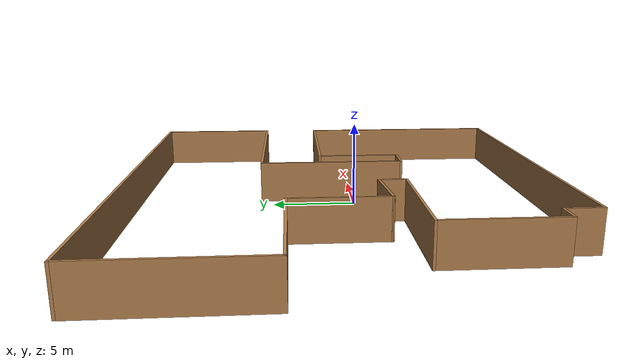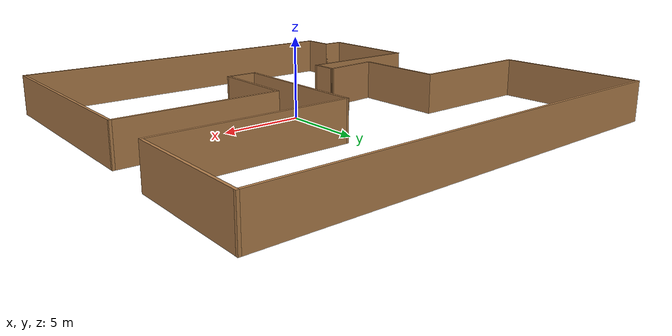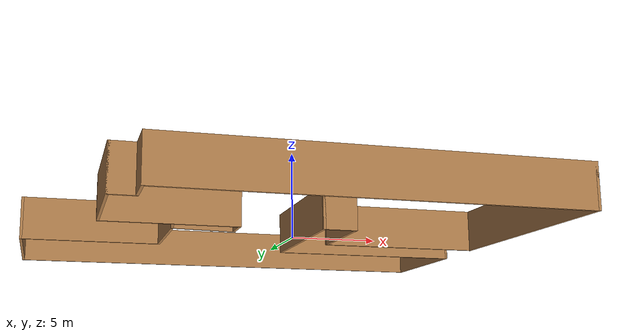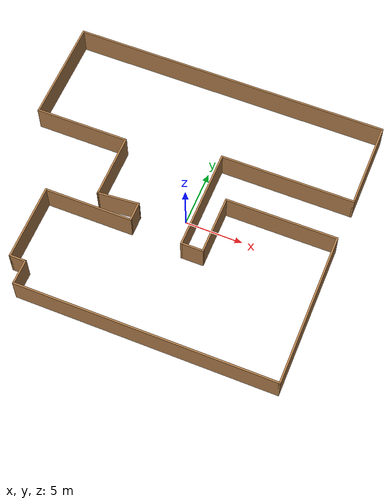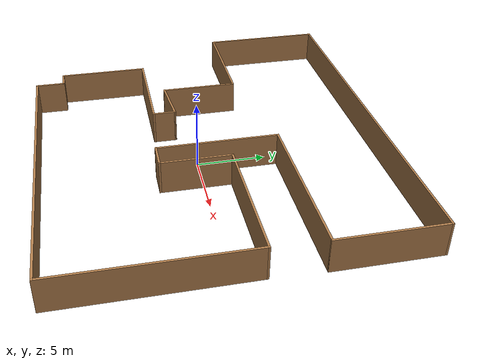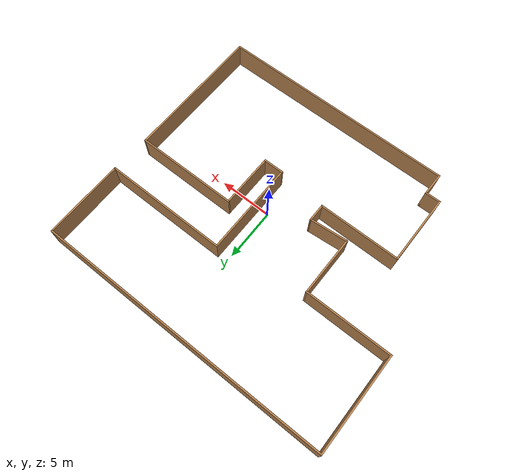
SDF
<?xml version='1.0'?>
<sdf version='1.6'>
  <model name='layout'>
    <pose frame=''>-1.405 1 0 0 -0 0</pose>
    <link name='Wall_0'>
      <collision name='Wall_0_Collision'>
        <geometry>
          <box>
            <size>1.75 0.15 2.5</size>
          </box>
        </geometry>
        <pose frame=''>0 0 1.25 0 -0 0</pose>
      </collision>
      <visual name='Wall_0_Visual'>
        <pose frame=''>0 0 1.25 0 -0 0</pose>
        <geometry>
          <box>
            <size>1.75 0.15 2.5</size>
          </box>
        </geometry>
        <material>
          <script>
            <uri>file://media/materials/scripts/gazebo.material</uri>
            <name>Gazebo/Wood</name>
          </script>
          <ambient>1 1 1 1</ambient>
        </material>
        <meta>
          <layer>0</layer>
        </meta>
      </visual>
      <pose frame=''>-2.325 -2.85 0 0 -0 -1.5708</pose>
    </link>
    <link name='Wall_1'>
      <collision name='Wall_1_Collision'>
        <geometry>
          <box>
            <size>7.75 0.15 2.5</size>
          </box>
        </geometry>
        <pose frame=''>0 0 1.25 0 -0 0</pose>
      </collision>
      <visual name='Wall_1_Visual'>
        <pose frame=''>0 0 1.25 0 -0 0</pose>
        <geometry>
          <box>
            <size>7.75 0.15 2.5</size>
          </box>
        </geometry>
        <material>
          <script>
            <uri>file://media/materials/scripts/gazebo.material</uri>
            <name>Gazebo/Wood</name>
          </script>
          <ambient>1 1 1 1</ambient>
        </material>
        <meta>
          <layer>0</layer>
        </meta>
      </visual>
      <pose frame=''>-6.125 -3.65 0 0 -0 3.14159</pose>
    </link>
    <link name='Wall_10'>
      <collision name='Wall_10_Collision'>
        <geometry>
          <box>
            <size>9 0.15 2.5</size>
          </box>
        </geometry>
        <pose frame=''>0 0 1.25 0 -0 0</pose>
      </collision>
      <visual name='Wall_10_Visual'>
        <pose frame=''>0 0 1.25 0 -0 0</pose>
        <geometry>
          <box>
            <size>9 0.15 2.5</size>
          </box>
        </geometry>
        <material>
          <script>
            <uri>file://media/materials/scripts/gazebo.material</uri>
            <name>Gazebo/Wood</name>
          </script>
          <ambient>1 1 1 1</ambient>
        </material>
        <meta>
          <layer>0</layer>
        </meta>
      </visual>
      <pose frame=''>2.325 0.325 0 0 -0 1.5708</pose>
    </link>
    <link name='Wall_11'>
      <collision name='Wall_11_Collision'>
        <geometry>
          <box>
            <size>11.75 0.15 2.5</size>
          </box>
        </geometry>
        <pose frame=''>0 0 1.25 0 -0 0</pose>
      </collision>
      <visual name='Wall_11_Visual'>
        <pose frame=''>0 0 1.25 0 -0 0</pose>
        <geometry>
          <box>
            <size>11.75 0.15 2.5</size>
          </box>
        </geometry>
        <material>
          <script>
            <uri>file://media/materials/scripts/gazebo.material</uri>
            <name>Gazebo/Wood</name>
          </script>
          <ambient>1 1 1 1</ambient>
        </material>
        <meta>
          <layer>0</layer>
        </meta>
      </visual>
      <pose frame=''>8.125 4.75 0 0 -0 0</pose>
    </link>
    <link name='Wall_12'>
      <collision name='Wall_12_Collision'>
        <geometry>
          <box>
            <size>7.75 0.15 2.5</size>
          </box>
        </geometry>
        <pose frame=''>0 0 1.25 0 -0 0</pose>
      </collision>
      <visual name='Wall_12_Visual'>
        <pose frame=''>0 0 1.25 0 -0 0</pose>
        <geometry>
          <box>
            <size>7.75 0.15 2.5</size>
          </box>
        </geometry>
        <material>
          <script>
            <uri>file://media/materials/scripts/gazebo.material</uri>
            <name>Gazebo/Wood</name>
          </script>
          <ambient>1 1 1 1</ambient>
        </material>
        <meta>
          <layer>0</layer>
        </meta>
      </visual>
      <pose frame=''>13.925 8.55 0 0 -0 1.5708</pose>
    </link>
    <link name='Wall_13'>
      <collision name='Wall_13_Collision'>
        <geometry>
          <box>
            <size>28 0.15 2.5</size>
          </box>
        </geometry>
        <pose frame=''>0 0 1.25 0 -0 0</pose>
      </collision>
      <visual name='Wall_13_Visual'>
        <pose frame=''>0 0 1.25 0 -0 0</pose>
        <geometry>
          <box>
            <size>28 0.15 2.5</size>
          </box>
        </geometry>
        <material>
          <script>
            <uri>file://media/materials/scripts/gazebo.material</uri>
            <name>Gazebo/Wood</name>
          </script>
          <ambient>1 1 1 1</ambient>
        </material>
        <meta>
          <layer>0</layer>
        </meta>
      </visual>
      <pose frame=''>-0 12.35 0 0 -0 3.14159</pose>
    </link>
    <link name='Wall_14'>
      <collision name='Wall_14_Collision'>
        <geometry>
          <box>
            <size>9.25 0.15 2.5</size>
          </box>
        </geometry>
        <pose frame=''>0 0 1.25 0 -0 0</pose>
      </collision>
      <visual name='Wall_14_Visual'>
        <pose frame=''>0 0 1.25 0 -0 0</pose>
        <geometry>
          <box>
            <size>9.25 0.15 2.5</size>
          </box>
        </geometry>
        <material>
          <script>
            <uri>file://media/materials/scripts/gazebo.material</uri>
            <name>Gazebo/Wood</name>
          </script>
          <ambient>1 1 1 1</ambient>
        </material>
        <meta>
          <layer>0</layer>
        </meta>
      </visual>
      <pose frame=''>-13.925 7.8 0 0 -0 -1.5708</pose>
    </link>
    <link name='Wall_15'>
      <collision name='Wall_15_Collision'>
        <geometry>
          <box>
            <size>8.25 0.15 2.5</size>
          </box>
        </geometry>
        <pose frame=''>0 0 1.25 0 -0 0</pose>
      </collision>
      <visual name='Wall_15_Visual'>
        <pose frame=''>0 0 1.25 0 -0 0</pose>
        <geometry>
          <box>
            <size>8.25 0.15 2.5</size>
          </box>
        </geometry>
        <material>
          <script>
            <uri>file://media/materials/scripts/gazebo.material</uri>
            <name>Gazebo/Wood</name>
          </script>
          <ambient>1 1 1 1</ambient>
        </material>
        <meta>
          <layer>0</layer>
        </meta>
      </visual>
      <pose frame=''>-9.875 3.25 0 0 -0 0</pose>
    </link>
    <link name='Wall_16'>
      <collision name='Wall_16_Collision'>
        <geometry>
          <box>
            <size>5.75 0.15 2.5</size>
          </box>
        </geometry>
        <pose frame=''>0 0 1.25 0 -0 0</pose>
      </collision>
      <visual name='Wall_16_Visual'>
        <pose frame=''>0 0 1.25 0 -0 0</pose>
        <geometry>
          <box>
            <size>5.75 0.15 2.5</size>
          </box>
        </geometry>
        <material>
          <script>
            <uri>file://media/materials/scripts/gazebo.material</uri>
            <name>Gazebo/Wood</name>
          </script>
          <ambient>1 1 1 1</ambient>
        </material>
        <meta>
          <layer>0</layer>
        </meta>
      </visual>
      <pose frame=''>-5.825 0.45 0 0 -0 -1.5708</pose>
    </link>
    <link name='Wall_17'>
      <collision name='Wall_17_Collision'>
        <geometry>
          <box>
            <size>3.66283 0.15 2.5</size>
          </box>
        </geometry>
        <pose frame=''>0 0 1.25 0 -0 0</pose>
      </collision>
      <visual name='Wall_17_Visual'>
        <pose frame=''>0 0 1.25 0 -0 0</pose>
        <geometry>
          <box>
            <size>3.66283 0.15 2.5</size>
          </box>
        </geometry>
        <material>
          <script>
            <uri>file://media/materials/scripts/gazebo.material</uri>
            <name>Gazebo/Wood</name>
          </script>
          <ambient>1 1 1 1</ambient>
        </material>
        <meta>
          <layer>0</layer>
        </meta>
      </visual>
      <pose frame=''>-4.075 -2.2 0 0 -0 0.085505</pose>
    </link>
    <link name='Wall_2'>
      <collision name='Wall_2_Collision'>
        <geometry>
          <box>
            <size>6.75 0.15 2.5</size>
          </box>
        </geometry>
        <pose frame=''>0 0 1.25 0 -0 0</pose>
      </collision>
      <visual name='Wall_2_Visual'>
        <pose frame=''>0 0 1.25 0 -0 0</pose>
        <geometry>
          <box>
            <size>6.75 0.15 2.5</size>
          </box>
        </geometry>
        <material>
          <script>
            <uri>file://media/materials/scripts/gazebo.material</uri>
            <name>Gazebo/Wood</name>
          </script>
          <ambient>1 1 1 1</ambient>
        </material>
        <meta>
          <layer>0</layer>
        </meta>
      </visual>
      <pose frame=''>-9.925 -6.95 0 0 -0 -1.5708</pose>
    </link>
    <link name='Wall_3'>
      <collision name='Wall_3_Collision'>
        <geometry>
          <box>
            <size>1.5 0.15 2.5</size>
          </box>
        </geometry>
        <pose frame=''>0 0 1.25 0 -0 0</pose>
      </collision>
      <visual name='Wall_3_Visual'>
        <pose frame=''>0 0 1.25 0 -0 0</pose>
        <geometry>
          <box>
            <size>1.5 0.15 2.5</size>
          </box>
        </geometry>
        <material>
          <script>
            <uri>file://media/materials/scripts/gazebo.material</uri>
            <name>Gazebo/Wood</name>
          </script>
          <ambient>1 1 1 1</ambient>
        </material>
        <meta>
          <layer>0</layer>
        </meta>
      </visual>
      <pose frame=''>-9.25 -10.25 0 0 -0 0</pose>
    </link>
    <link name='Wall_4'>
      <collision name='Wall_4_Collision'>
        <geometry>
          <box>
            <size>2.25 0.15 2.5</size>
          </box>
        </geometry>
        <pose frame=''>0 0 1.25 0 -0 0</pose>
      </collision>
      <visual name='Wall_4_Visual'>
        <pose frame=''>0 0 1.25 0 -0 0</pose>
        <geometry>
          <box>
            <size>2.25 0.15 2.5</size>
          </box>
        </geometry>
        <material>
          <script>
            <uri>file://media/materials/scripts/gazebo.material</uri>
            <name>Gazebo/Wood</name>
          </script>
          <ambient>1 1 1 1</ambient>
        </material>
        <meta>
          <layer>0</layer>
        </meta>
      </visual>
      <pose frame=''>-8.575 -11.3 0 0 -0 -1.5708</pose>
    </link>
    <link name='Wall_5'>
      <collision name='Wall_5_Collision'>
        <geometry>
          <box>
            <size>22.5 0.15 2.5</size>
          </box>
        </geometry>
        <pose frame=''>0 0 1.25 0 -0 0</pose>
      </collision>
      <visual name='Wall_5_Visual'>
        <pose frame=''>0 0 1.25 0 -0 0</pose>
        <geometry>
          <box>
            <size>22.5 0.15 2.5</size>
          </box>
        </geometry>
        <material>
          <script>
            <uri>file://media/materials/scripts/gazebo.material</uri>
            <name>Gazebo/Wood</name>
          </script>
          <ambient>1 1 1 1</ambient>
        </material>
        <meta>
          <layer>0</layer>
        </meta>
      </visual>
      <pose frame=''>2.6 -12.35 0 0 -0 0</pose>
    </link>
    <link name='Wall_6'>
      <collision name='Wall_6_Collision'>
        <geometry>
          <box>
            <size>13.5 0.15 2.5</size>
          </box>
        </geometry>
        <pose frame=''>0 0 1.25 0 -0 0</pose>
      </collision>
      <visual name='Wall_6_Visual'>
        <pose frame=''>0 0 1.25 0 -0 0</pose>
        <geometry>
          <box>
            <size>13.5 0.15 2.5</size>
          </box>
        </geometry>
        <material>
          <script>
            <uri>file://media/materials/scripts/gazebo.material</uri>
            <name>Gazebo/Wood</name>
          </script>
          <ambient>1 1 1 1</ambient>
        </material>
        <meta>
          <layer>0</layer>
        </meta>
      </visual>
      <pose frame=''>13.775 -5.675 0 0 -0 1.5708</pose>
    </link>
    <link name='Wall_7'>
      <collision name='Wall_7_Collision'>
        <geometry>
          <box>
            <size>9.75 0.15 2.5</size>
          </box>
        </geometry>
        <pose frame=''>0 0 1.25 0 -0 0</pose>
      </collision>
      <visual name='Wall_7_Visual'>
        <pose frame=''>0 0 1.25 0 -0 0</pose>
        <geometry>
          <box>
            <size>9.75 0.15 2.5</size>
          </box>
        </geometry>
        <material>
          <script>
            <uri>file://media/materials/scripts/gazebo.material</uri>
            <name>Gazebo/Wood</name>
          </script>
          <ambient>1 1 1 1</ambient>
        </material>
        <meta>
          <layer>0</layer>
        </meta>
      </visual>
      <pose frame=''>8.975 1 0 0 -0 3.14159</pose>
    </link>
    <link name='Wall_8'>
      <collision name='Wall_8_Collision'>
        <geometry>
          <box>
            <size>5.25 0.15 2.5</size>
          </box>
        </geometry>
        <pose frame=''>0 0 1.25 0 -0 0</pose>
      </collision>
      <visual name='Wall_8_Visual'>
        <pose frame=''>0 0 1.25 0 -0 0</pose>
        <geometry>
          <box>
            <size>5.25 0.15 2.5</size>
          </box>
        </geometry>
        <material>
          <script>
            <uri>file://media/materials/scripts/gazebo.material</uri>
            <name>Gazebo/Wood</name>
          </script>
          <ambient>1 1 1 1</ambient>
        </material>
        <meta>
          <layer>0</layer>
        </meta>
      </visual>
      <pose frame=''>4.175 -1.55 0 0 -0 -1.5708</pose>
    </link>
    <link name='Wall_9'>
      <collision name='Wall_9_Collision'>
        <geometry>
          <box>
            <size>2 0.15 2.5</size>
          </box>
        </geometry>
        <pose frame=''>0 0 1.25 0 -0 0</pose>
      </collision>
      <visual name='Wall_9_Visual'>
        <pose frame=''>0 0 1.25 0 -0 0</pose>
        <geometry>
          <box>
            <size>2 0.15 2.5</size>
          </box>
        </geometry>
        <material>
          <script>
            <uri>file://media/materials/scripts/gazebo.material</uri>
            <name>Gazebo/Wood</name>
          </script>
          <ambient>1 1 1 1</ambient>
        </material>
        <meta>
          <layer>0</layer>
        </meta>
      </visual>
      <pose frame=''>3.25 -4.1 0 0 -0 3.14159</pose>
    </link>
    <static>1</static>
  </model>
</sdf>
